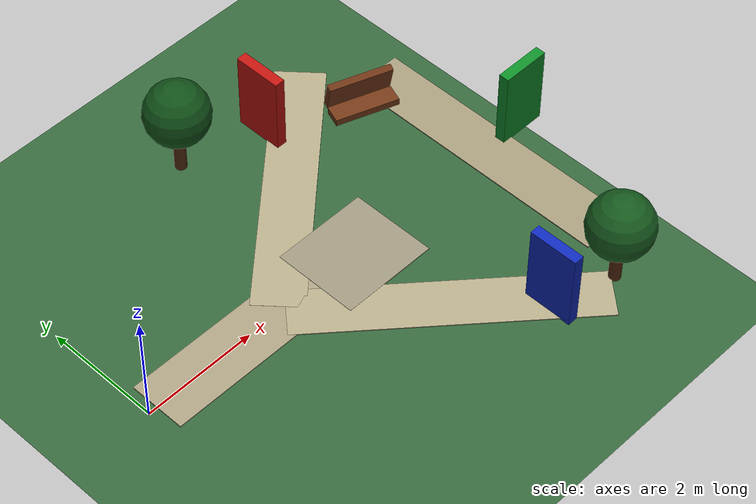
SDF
<?xml version="1.0"?>
<sdf version="1.6">
  <world name="mari_nav2_stage3_small_loop">
    <gravity>0 0 -9.80665</gravity>

    <spherical_coordinates>
      <heading_deg>180</heading_deg>
    </spherical_coordinates>

    <physics name="default_physics" default="true" type="ode">
      <max_step_size>0.001</max_step_size>
      <real_time_factor>1.0</real_time_factor>
      <real_time_update_rate>1000</real_time_update_rate>
    </physics>

    <scene>
      <ambient>0.58 0.60 0.56 1</ambient>
      <background>0.67 0.79 0.98 1</background>
      <shadows>true</shadows>
    </scene>

    <light name="sun" type="directional">
      <cast_shadows>true</cast_shadows>
      <pose>0 0 14 0 0 0</pose>
      <diffuse>0.96 0.92 0.82 1</diffuse>
      <specular>0.22 0.22 0.18 1</specular>
      <direction>-0.32 0.24 -0.92</direction>
    </light>

    <model name="stage3_ground">
      <static>true</static>
      <link name="link">
        <collision name="ground_collision">
          <geometry><plane><normal>0 0 1</normal><size>16 12</size></plane></geometry>
        </collision>
        <visual name="grass_visual">
          <geometry><plane><normal>0 0 1</normal><size>16 12</size></plane></geometry>
          <material><ambient>0.21 0.40 0.23 1</ambient><diffuse>0.21 0.40 0.23 1</diffuse></material>
        </visual>
      </link>
    </model>

    <model name="stage3_loop_paths">
      <static>true</static>
      <link name="link">
        <visual name="entry_path">
          <pose>1.9 0 0.010 0 0 0</pose>
          <geometry><box><size>3.5 1.0 0.018</size></box></geometry>
          <material><ambient>0.66 0.62 0.50 1</ambient><diffuse>0.66 0.62 0.50 1</diffuse></material>
        </visual>
        <visual name="left_branch">
          <pose>4.5 1.7 0.011 0 0 0.72</pose>
          <geometry><box><size>4.9 0.85 0.018</size></box></geometry>
          <material><ambient>0.70 0.66 0.53 1</ambient><diffuse>0.70 0.66 0.53 1</diffuse></material>
        </visual>
        <visual name="right_branch">
          <pose>4.5 -1.7 0.011 0 0 -0.72</pose>
          <geometry><box><size>4.9 0.85 0.018</size></box></geometry>
          <material><ambient>0.70 0.66 0.53 1</ambient><diffuse>0.70 0.66 0.53 1</diffuse></material>
        </visual>
        <visual name="far_connector">
          <pose>7.2 0 0.012 0 0 1.57</pose>
          <geometry><box><size>4.9 0.9 0.018</size></box></geometry>
          <material><ambient>0.64 0.60 0.48 1</ambient><diffuse>0.64 0.60 0.48 1</diffuse></material>
        </visual>
        <visual name="center_plaza">
          <pose>4.2 0 0.013 0 0 0</pose>
          <geometry><box><size>1.7 1.5 0.020</size></box></geometry>
          <material><ambient>0.61 0.58 0.49 1</ambient><diffuse>0.61 0.58 0.49 1</diffuse></material>
        </visual>
      </link>
    </model>

    <model name="stage3_tree_left">
      <static>true</static>
      <pose>3.6 3.2 0 0 0 0</pose>
      <link name="link">
        <collision name="trunk_collision">
          <pose>0 0 0.50 0 0 0</pose>
          <geometry><cylinder><radius>0.10</radius><length>1.0</length></cylinder></geometry>
        </collision>
        <visual name="trunk_visual">
          <pose>0 0 0.50 0 0 0</pose>
          <geometry><cylinder><radius>0.10</radius><length>1.0</length></cylinder></geometry>
          <material><ambient>0.33 0.17 0.08 1</ambient><diffuse>0.33 0.17 0.08 1</diffuse></material>
        </visual>
        <collision name="crown_collision">
          <pose>0 0 1.18 0 0 0</pose>
          <geometry><sphere><radius>0.55</radius></sphere></geometry>
        </collision>
        <visual name="crown_visual">
          <pose>0 0 1.18 0 0 0</pose>
          <geometry><sphere><radius>0.55</radius></sphere></geometry>
          <material><ambient>0.06 0.31 0.09 1</ambient><diffuse>0.06 0.31 0.09 1</diffuse></material>
        </visual>
      </link>
    </model>

    <model name="stage3_tree_right">
      <static>true</static>
      <pose>6.6 -3.1 0 0 0 0</pose>
      <link name="link">
        <collision name="trunk_collision">
          <pose>0 0 0.48 0 0 0</pose>
          <geometry><cylinder><radius>0.10</radius><length>0.96</length></cylinder></geometry>
        </collision>
        <visual name="trunk_visual">
          <pose>0 0 0.48 0 0 0</pose>
          <geometry><cylinder><radius>0.10</radius><length>0.96</length></cylinder></geometry>
          <material><ambient>0.34 0.16 0.07 1</ambient><diffuse>0.34 0.16 0.07 1</diffuse></material>
        </visual>
        <collision name="crown_collision">
          <pose>0 0 1.15 0 0 0</pose>
          <geometry><sphere><radius>0.55</radius></sphere></geometry>
        </collision>
        <visual name="crown_visual">
          <pose>0 0 1.15 0 0 0</pose>
          <geometry><sphere><radius>0.55</radius></sphere></geometry>
          <material><ambient>0.08 0.34 0.11 1</ambient><diffuse>0.08 0.34 0.11 1</diffuse></material>
        </visual>
      </link>
    </model>

    <model name="stage3_bench">
      <static>true</static>
      <pose>6.3 1.85 0 0 0 -0.35</pose>
      <link name="link">
        <collision name="seat_collision">
          <pose>0 0 0.32 0 0 0</pose>
          <geometry><box><size>1.10 0.32 0.12</size></box></geometry>
        </collision>
        <visual name="seat_visual">
          <pose>0 0 0.32 0 0 0</pose>
          <geometry><box><size>1.10 0.32 0.12</size></box></geometry>
          <material><ambient>0.45 0.22 0.09 1</ambient><diffuse>0.45 0.22 0.09 1</diffuse></material>
        </visual>
        <collision name="back_collision">
          <pose>0 0.18 0.60 0.25 0 0</pose>
          <geometry><box><size>1.10 0.12 0.52</size></box></geometry>
        </collision>
        <visual name="back_visual">
          <pose>0 0.18 0.60 0.25 0 0</pose>
          <geometry><box><size>1.10 0.12 0.52</size></box></geometry>
          <material><ambient>0.42 0.20 0.08 1</ambient><diffuse>0.42 0.20 0.08 1</diffuse></material>
        </visual>
      </link>
    </model>

    <model name="stage3_panels">
      <static>true</static>
      <link name="link">
        <visual name="red_panel">
          <pose>5.0 2.8 0.70 0 0 0</pose>
          <geometry><box><size>0.18 0.85 1.40</size></box></geometry>
          <material><ambient>0.75 0.08 0.06 1</ambient><diffuse>0.75 0.08 0.06 1</diffuse></material>
        </visual>
        <visual name="blue_panel">
          <pose>5.5 -2.8 0.70 0 0 0</pose>
          <geometry><box><size>0.18 0.85 1.40</size></box></geometry>
          <material><ambient>0.06 0.16 0.72 1</ambient><diffuse>0.06 0.16 0.72 1</diffuse></material>
        </visual>
        <visual name="green_panel">
          <pose>7.9 0.0 0.70 0 0 1.57</pose>
          <geometry><box><size>0.18 0.85 1.40</size></box></geometry>
          <material><ambient>0.06 0.55 0.16 1</ambient><diffuse>0.06 0.55 0.16 1</diffuse></material>
        </visual>
      </link>
    </model>
  </world>
</sdf>
